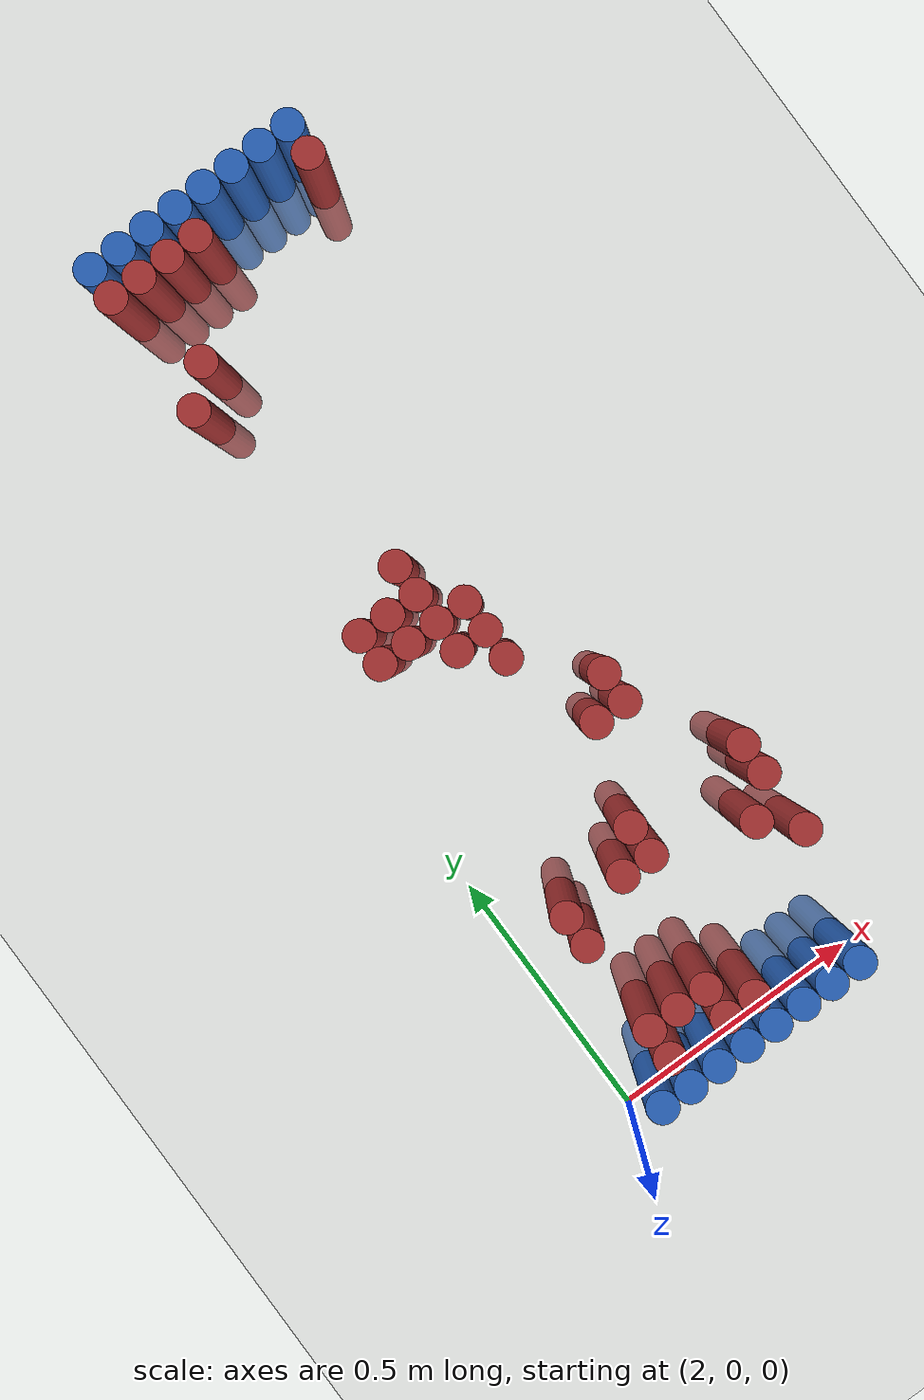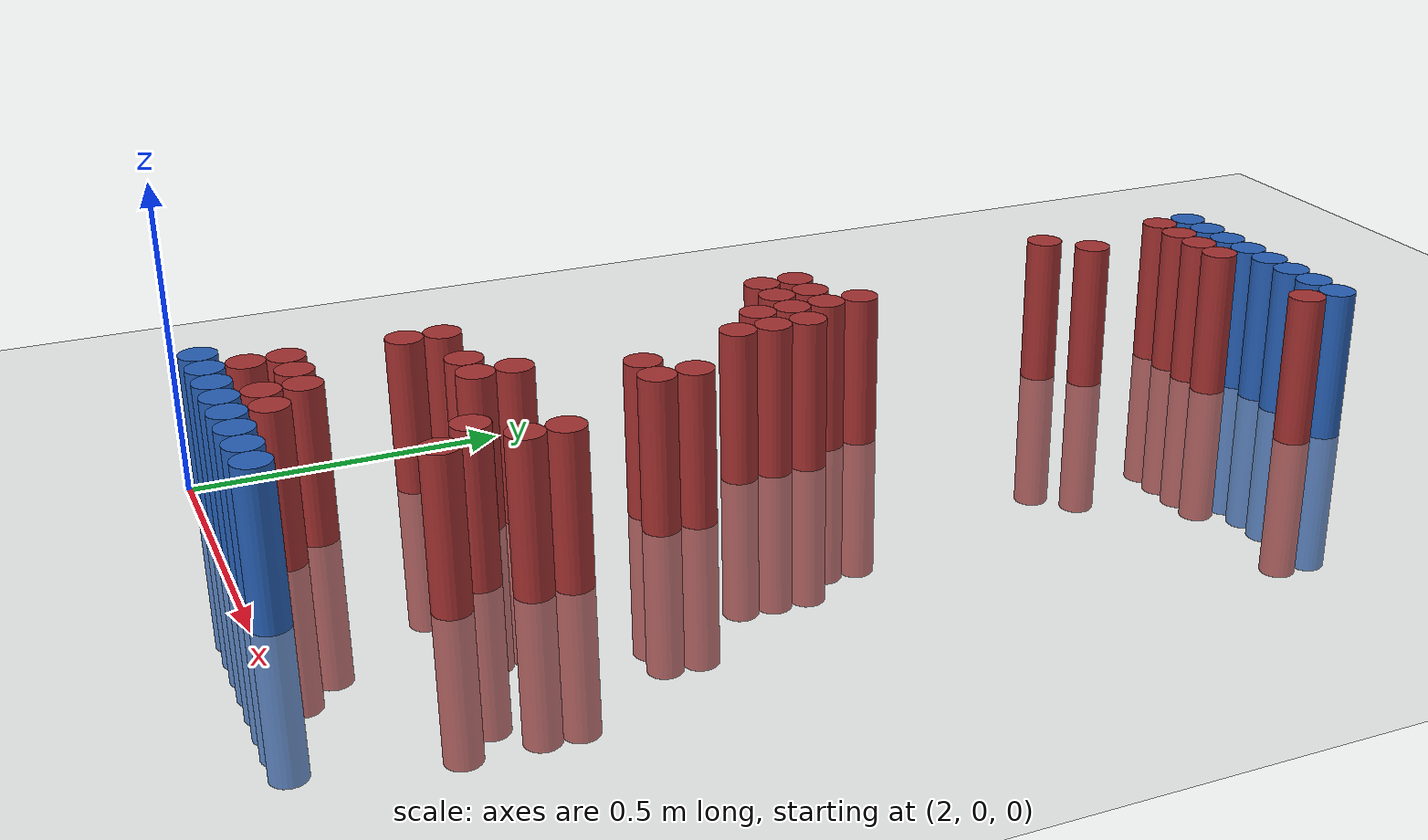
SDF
<sdf version="1.6">
 <world name="default">
  <model name="ground_plane">
   <static>1</static>
   <link name="link">
    <collision name="collision">
     <geometry><plane><normal>0 0 1</normal><size>100 100</size></plane></geometry>
     <surface><friction><ode><mu>100</mu><mu2>50</mu2></ode></friction></surface>
    </collision>
    <visual name="visual">
     <cast_shadows>0</cast_shadows>
     <geometry><plane><normal>0 0 1</normal><size>100 100</size></plane></geometry>
     <material>
      <script><uri>file://media/materials/scripts/gazebo.material</uri><name>Gazebo/Grey</name></script>
     </material>
    </visual>
   </link>
  </model>
  <model name="unit_cylinder_96">
   <static>1</static>
   <pose>2.130000 1.770000 0.000000 0.000000 0.000000 0.000000</pose>
   <link name="link">
    <inertial>
     <mass>1</mass>
     <inertia><ixx>0.145833</ixx><ixy>0</ixy><ixz>0</ixz><iyy>0.145833</iyy><iyz>0</iyz><izz>0.125</izz></inertia>
    </inertial>
    <collision name="collision">
     <geometry><cylinder><radius>0.030000</radius><length>0.5</length></cylinder></geometry>
    </collision>
    <visual name="visual">
     <geometry><cylinder><radius>0.030000</radius><length>0.5</length></cylinder></geometry>
     <material>
      <ambient>0.152000 0.379000 0.720000 1</ambient>
      <diffuse>0.152000 0.379000 0.720000 1</diffuse>
     </material>
     <material>
      <script><name>Gazebo/Grey</name><uri>file://media/materials/scripts/gazebo.material</uri></script>
     </material>
    </visual>
   </link>
  </model>
  <model name="unit_cylinder_97">
   <static>1</static>
   <pose>2.190000 1.770000 0.000000 0.000000 0.000000 0.000000</pose>
   <link name="link">
    <inertial>
     <mass>1</mass>
     <inertia><ixx>0.145833</ixx><ixy>0</ixy><ixz>0</ixz><iyy>0.145833</iyy><iyz>0</iyz><izz>0.125</izz></inertia>
    </inertial>
    <collision name="collision">
     <geometry><cylinder><radius>0.030000</radius><length>0.5</length></cylinder></geometry>
    </collision>
    <visual name="visual">
     <geometry><cylinder><radius>0.030000</radius><length>0.5</length></cylinder></geometry>
     <material>
      <ambient>0.152000 0.379000 0.720000 1</ambient>
      <diffuse>0.152000 0.379000 0.720000 1</diffuse>
     </material>
     <material>
      <script><name>Gazebo/Grey</name><uri>file://media/materials/scripts/gazebo.material</uri></script>
     </material>
    </visual>
   </link>
  </model>
  <model name="unit_cylinder_98">
   <static>1</static>
   <pose>2.250000 1.770000 0.000000 0.000000 0.000000 0.000000</pose>
   <link name="link">
    <inertial>
     <mass>1</mass>
     <inertia><ixx>0.145833</ixx><ixy>0</ixy><ixz>0</ixz><iyy>0.145833</iyy><iyz>0</iyz><izz>0.125</izz></inertia>
    </inertial>
    <collision name="collision">
     <geometry><cylinder><radius>0.030000</radius><length>0.5</length></cylinder></geometry>
    </collision>
    <visual name="visual">
     <geometry><cylinder><radius>0.030000</radius><length>0.5</length></cylinder></geometry>
     <material>
      <ambient>0.152000 0.379000 0.720000 1</ambient>
      <diffuse>0.152000 0.379000 0.720000 1</diffuse>
     </material>
     <material>
      <script><name>Gazebo/Grey</name><uri>file://media/materials/scripts/gazebo.material</uri></script>
     </material>
    </visual>
   </link>
  </model>
  <model name="unit_cylinder_99">
   <static>1</static>
   <pose>2.310000 1.770000 0.000000 0.000000 0.000000 0.000000</pose>
   <link name="link">
    <inertial>
     <mass>1</mass>
     <inertia><ixx>0.145833</ixx><ixy>0</ixy><ixz>0</ixz><iyy>0.145833</iyy><iyz>0</iyz><izz>0.125</izz></inertia>
    </inertial>
    <collision name="collision">
     <geometry><cylinder><radius>0.030000</radius><length>0.5</length></cylinder></geometry>
    </collision>
    <visual name="visual">
     <geometry><cylinder><radius>0.030000</radius><length>0.5</length></cylinder></geometry>
     <material>
      <ambient>0.152000 0.379000 0.720000 1</ambient>
      <diffuse>0.152000 0.379000 0.720000 1</diffuse>
     </material>
     <material>
      <script><name>Gazebo/Grey</name><uri>file://media/materials/scripts/gazebo.material</uri></script>
     </material>
    </visual>
   </link>
  </model>
  <model name="unit_cylinder_100">
   <static>1</static>
   <pose>2.370000 1.770000 0.000000 0.000000 0.000000 0.000000</pose>
   <link name="link">
    <inertial>
     <mass>1</mass>
     <inertia><ixx>0.145833</ixx><ixy>0</ixy><ixz>0</ixz><iyy>0.145833</iyy><iyz>0</iyz><izz>0.125</izz></inertia>
    </inertial>
    <collision name="collision">
     <geometry><cylinder><radius>0.030000</radius><length>0.5</length></cylinder></geometry>
    </collision>
    <visual name="visual">
     <geometry><cylinder><radius>0.030000</radius><length>0.5</length></cylinder></geometry>
     <material>
      <ambient>0.152000 0.379000 0.720000 1</ambient>
      <diffuse>0.152000 0.379000 0.720000 1</diffuse>
     </material>
     <material>
      <script><name>Gazebo/Grey</name><uri>file://media/materials/scripts/gazebo.material</uri></script>
     </material>
    </visual>
   </link>
  </model>
  <model name="unit_cylinder_101">
   <static>1</static>
   <pose>2.430000 1.770000 0.000000 0.000000 0.000000 0.000000</pose>
   <link name="link">
    <inertial>
     <mass>1</mass>
     <inertia><ixx>0.145833</ixx><ixy>0</ixy><ixz>0</ixz><iyy>0.145833</iyy><iyz>0</iyz><izz>0.125</izz></inertia>
    </inertial>
    <collision name="collision">
     <geometry><cylinder><radius>0.030000</radius><length>0.5</length></cylinder></geometry>
    </collision>
    <visual name="visual">
     <geometry><cylinder><radius>0.030000</radius><length>0.5</length></cylinder></geometry>
     <material>
      <ambient>0.152000 0.379000 0.720000 1</ambient>
      <diffuse>0.152000 0.379000 0.720000 1</diffuse>
     </material>
     <material>
      <script><name>Gazebo/Grey</name><uri>file://media/materials/scripts/gazebo.material</uri></script>
     </material>
    </visual>
   </link>
  </model>
  <model name="unit_cylinder_102">
   <static>1</static>
   <pose>2.490000 1.770000 0.000000 0.000000 0.000000 0.000000</pose>
   <link name="link">
    <inertial>
     <mass>1</mass>
     <inertia><ixx>0.145833</ixx><ixy>0</ixy><ixz>0</ixz><iyy>0.145833</iyy><iyz>0</iyz><izz>0.125</izz></inertia>
    </inertial>
    <collision name="collision">
     <geometry><cylinder><radius>0.030000</radius><length>0.5</length></cylinder></geometry>
    </collision>
    <visual name="visual">
     <geometry><cylinder><radius>0.030000</radius><length>0.5</length></cylinder></geometry>
     <material>
      <ambient>0.152000 0.379000 0.720000 1</ambient>
      <diffuse>0.152000 0.379000 0.720000 1</diffuse>
     </material>
     <material>
      <script><name>Gazebo/Grey</name><uri>file://media/materials/scripts/gazebo.material</uri></script>
     </material>
    </visual>
   </link>
  </model>
  <model name="unit_cylinder_103">
   <static>1</static>
   <pose>2.550000 1.770000 0.000000 0.000000 0.000000 0.000000</pose>
   <link name="link">
    <inertial>
     <mass>1</mass>
     <inertia><ixx>0.145833</ixx><ixy>0</ixy><ixz>0</ixz><iyy>0.145833</iyy><iyz>0</iyz><izz>0.125</izz></inertia>
    </inertial>
    <collision name="collision">
     <geometry><cylinder><radius>0.030000</radius><length>0.5</length></cylinder></geometry>
    </collision>
    <visual name="visual">
     <geometry><cylinder><radius>0.030000</radius><length>0.5</length></cylinder></geometry>
     <material>
      <ambient>0.152000 0.379000 0.720000 1</ambient>
      <diffuse>0.152000 0.379000 0.720000 1</diffuse>
     </material>
     <material>
      <script><name>Gazebo/Grey</name><uri>file://media/materials/scripts/gazebo.material</uri></script>
     </material>
    </visual>
   </link>
  </model>
  <model name="unit_cylinder_125">
   <static>1</static>
   <pose>2.130000 1.710000 0.000000 0.000000 0.000000 0.000000</pose>
   <link name="link">
    <inertial>
     <mass>1</mass>
     <inertia><ixx>0.145833</ixx><ixy>0</ixy><ixz>0</ixz><iyy>0.145833</iyy><iyz>0</iyz><izz>0.125</izz></inertia>
    </inertial>
    <collision name="collision">
     <geometry><cylinder><radius>0.030000</radius><length>0.5</length></cylinder></geometry>
    </collision>
    <visual name="visual">
     <geometry><cylinder><radius>0.030000</radius><length>0.5</length></cylinder></geometry>
     <material>
      <ambient>0.648000 0.192000 0.192000 1</ambient>
      <diffuse>0.648000 0.192000 0.192000 1</diffuse>
     </material>
     <material>
      <script><name>Gazebo/Grey</name><uri>file://media/materials/scripts/gazebo.material</uri></script>
     </material>
    </visual>
   </link>
  </model>
  <model name="unit_cylinder_126">
   <static>1</static>
   <pose>2.190000 1.710000 0.000000 0.000000 0.000000 0.000000</pose>
   <link name="link">
    <inertial>
     <mass>1</mass>
     <inertia><ixx>0.145833</ixx><ixy>0</ixy><ixz>0</ixz><iyy>0.145833</iyy><iyz>0</iyz><izz>0.125</izz></inertia>
    </inertial>
    <collision name="collision">
     <geometry><cylinder><radius>0.030000</radius><length>0.5</length></cylinder></geometry>
    </collision>
    <visual name="visual">
     <geometry><cylinder><radius>0.030000</radius><length>0.5</length></cylinder></geometry>
     <material>
      <ambient>0.648000 0.192000 0.192000 1</ambient>
      <diffuse>0.648000 0.192000 0.192000 1</diffuse>
     </material>
     <material>
      <script><name>Gazebo/Grey</name><uri>file://media/materials/scripts/gazebo.material</uri></script>
     </material>
    </visual>
   </link>
  </model>
  <model name="unit_cylinder_127">
   <static>1</static>
   <pose>2.250000 1.710000 0.000000 0.000000 0.000000 0.000000</pose>
   <link name="link">
    <inertial>
     <mass>1</mass>
     <inertia><ixx>0.145833</ixx><ixy>0</ixy><ixz>0</ixz><iyy>0.145833</iyy><iyz>0</iyz><izz>0.125</izz></inertia>
    </inertial>
    <collision name="collision">
     <geometry><cylinder><radius>0.030000</radius><length>0.5</length></cylinder></geometry>
    </collision>
    <visual name="visual">
     <geometry><cylinder><radius>0.030000</radius><length>0.5</length></cylinder></geometry>
     <material>
      <ambient>0.648000 0.192000 0.192000 1</ambient>
      <diffuse>0.648000 0.192000 0.192000 1</diffuse>
     </material>
     <material>
      <script><name>Gazebo/Grey</name><uri>file://media/materials/scripts/gazebo.material</uri></script>
     </material>
    </visual>
   </link>
  </model>
  <model name="unit_cylinder_128">
   <static>1</static>
   <pose>2.310000 1.710000 0.000000 0.000000 0.000000 0.000000</pose>
   <link name="link">
    <inertial>
     <mass>1</mass>
     <inertia><ixx>0.145833</ixx><ixy>0</ixy><ixz>0</ixz><iyy>0.145833</iyy><iyz>0</iyz><izz>0.125</izz></inertia>
    </inertial>
    <collision name="collision">
     <geometry><cylinder><radius>0.030000</radius><length>0.5</length></cylinder></geometry>
    </collision>
    <visual name="visual">
     <geometry><cylinder><radius>0.030000</radius><length>0.5</length></cylinder></geometry>
     <material>
      <ambient>0.648000 0.192000 0.192000 1</ambient>
      <diffuse>0.648000 0.192000 0.192000 1</diffuse>
     </material>
     <material>
      <script><name>Gazebo/Grey</name><uri>file://media/materials/scripts/gazebo.material</uri></script>
     </material>
    </visual>
   </link>
  </model>
  <model name="unit_cylinder_129">
   <static>1</static>
   <pose>2.550000 1.710000 0.000000 0.000000 0.000000 0.000000</pose>
   <link name="link">
    <inertial>
     <mass>1</mass>
     <inertia><ixx>0.145833</ixx><ixy>0</ixy><ixz>0</ixz><iyy>0.145833</iyy><iyz>0</iyz><izz>0.125</izz></inertia>
    </inertial>
    <collision name="collision">
     <geometry><cylinder><radius>0.030000</radius><length>0.5</length></cylinder></geometry>
    </collision>
    <visual name="visual">
     <geometry><cylinder><radius>0.030000</radius><length>0.5</length></cylinder></geometry>
     <material>
      <ambient>0.648000 0.192000 0.192000 1</ambient>
      <diffuse>0.648000 0.192000 0.192000 1</diffuse>
     </material>
     <material>
      <script><name>Gazebo/Grey</name><uri>file://media/materials/scripts/gazebo.material</uri></script>
     </material>
    </visual>
   </link>
  </model>
  <model name="unit_cylinder_155">
   <static>1</static>
   <pose>2.190000 1.530000 0.000000 0.000000 0.000000 0.000000</pose>
   <link name="link">
    <inertial>
     <mass>1</mass>
     <inertia><ixx>0.145833</ixx><ixy>0</ixy><ixz>0</ixz><iyy>0.145833</iyy><iyz>0</iyz><izz>0.125</izz></inertia>
    </inertial>
    <collision name="collision">
     <geometry><cylinder><radius>0.030000</radius><length>0.5</length></cylinder></geometry>
    </collision>
    <visual name="visual">
     <geometry><cylinder><radius>0.030000</radius><length>0.5</length></cylinder></geometry>
     <material>
      <ambient>0.648000 0.192000 0.192000 1</ambient>
      <diffuse>0.648000 0.192000 0.192000 1</diffuse>
     </material>
     <material>
      <script><name>Gazebo/Grey</name><uri>file://media/materials/scripts/gazebo.material</uri></script>
     </material>
    </visual>
   </link>
  </model>
  <model name="unit_cylinder_164">
   <static>1</static>
   <pose>2.130000 1.470000 0.000000 0.000000 0.000000 0.000000</pose>
   <link name="link">
    <inertial>
     <mass>1</mass>
     <inertia><ixx>0.145833</ixx><ixy>0</ixy><ixz>0</ixz><iyy>0.145833</iyy><iyz>0</iyz><izz>0.125</izz></inertia>
    </inertial>
    <collision name="collision">
     <geometry><cylinder><radius>0.030000</radius><length>0.5</length></cylinder></geometry>
    </collision>
    <visual name="visual">
     <geometry><cylinder><radius>0.030000</radius><length>0.5</length></cylinder></geometry>
     <material>
      <ambient>0.648000 0.192000 0.192000 1</ambient>
      <diffuse>0.648000 0.192000 0.192000 1</diffuse>
     </material>
     <material>
      <script><name>Gazebo/Grey</name><uri>file://media/materials/scripts/gazebo.material</uri></script>
     </material>
    </visual>
   </link>
  </model>
  <model name="unit_cylinder_197">
   <static>1</static>
   <pose>2.250000 1.050000 0.000000 0.000000 0.000000 0.000000</pose>
   <link name="link">
    <inertial>
     <mass>1</mass>
     <inertia><ixx>0.145833</ixx><ixy>0</ixy><ixz>0</ixz><iyy>0.145833</iyy><iyz>0</iyz><izz>0.125</izz></inertia>
    </inertial>
    <collision name="collision">
     <geometry><cylinder><radius>0.030000</radius><length>0.5</length></cylinder></geometry>
    </collision>
    <visual name="visual">
     <geometry><cylinder><radius>0.030000</radius><length>0.5</length></cylinder></geometry>
     <material>
      <ambient>0.648000 0.192000 0.192000 1</ambient>
      <diffuse>0.648000 0.192000 0.192000 1</diffuse>
     </material>
     <material>
      <script><name>Gazebo/Grey</name><uri>file://media/materials/scripts/gazebo.material</uri></script>
     </material>
    </visual>
   </link>
  </model>
  <model name="unit_cylinder_199">
   <static>1</static>
   <pose>2.130000 0.990000 0.000000 0.000000 0.000000 0.000000</pose>
   <link name="link">
    <inertial>
     <mass>1</mass>
     <inertia><ixx>0.145833</ixx><ixy>0</ixy><ixz>0</ixz><iyy>0.145833</iyy><iyz>0</iyz><izz>0.125</izz></inertia>
    </inertial>
    <collision name="collision">
     <geometry><cylinder><radius>0.030000</radius><length>0.5</length></cylinder></geometry>
    </collision>
    <visual name="visual">
     <geometry><cylinder><radius>0.030000</radius><length>0.5</length></cylinder></geometry>
     <material>
      <ambient>0.648000 0.192000 0.192000 1</ambient>
      <diffuse>0.648000 0.192000 0.192000 1</diffuse>
     </material>
     <material>
      <script><name>Gazebo/Grey</name><uri>file://media/materials/scripts/gazebo.material</uri></script>
     </material>
    </visual>
   </link>
  </model>
  <model name="unit_cylinder_200">
   <static>1</static>
   <pose>2.190000 0.990000 0.000000 0.000000 0.000000 0.000000</pose>
   <link name="link">
    <inertial>
     <mass>1</mass>
     <inertia><ixx>0.145833</ixx><ixy>0</ixy><ixz>0</ixz><iyy>0.145833</iyy><iyz>0</iyz><izz>0.125</izz></inertia>
    </inertial>
    <collision name="collision">
     <geometry><cylinder><radius>0.030000</radius><length>0.5</length></cylinder></geometry>
    </collision>
    <visual name="visual">
     <geometry><cylinder><radius>0.030000</radius><length>0.5</length></cylinder></geometry>
     <material>
      <ambient>0.648000 0.192000 0.192000 1</ambient>
      <diffuse>0.648000 0.192000 0.192000 1</diffuse>
     </material>
     <material>
      <script><name>Gazebo/Grey</name><uri>file://media/materials/scripts/gazebo.material</uri></script>
     </material>
    </visual>
   </link>
  </model>
  <model name="unit_cylinder_201">
   <static>1</static>
   <pose>2.250000 0.990000 0.000000 0.000000 0.000000 0.000000</pose>
   <link name="link">
    <inertial>
     <mass>1</mass>
     <inertia><ixx>0.145833</ixx><ixy>0</ixy><ixz>0</ixz><iyy>0.145833</iyy><iyz>0</iyz><izz>0.125</izz></inertia>
    </inertial>
    <collision name="collision">
     <geometry><cylinder><radius>0.030000</radius><length>0.5</length></cylinder></geometry>
    </collision>
    <visual name="visual">
     <geometry><cylinder><radius>0.030000</radius><length>0.5</length></cylinder></geometry>
     <material>
      <ambient>0.648000 0.192000 0.192000 1</ambient>
      <diffuse>0.648000 0.192000 0.192000 1</diffuse>
     </material>
     <material>
      <script><name>Gazebo/Grey</name><uri>file://media/materials/scripts/gazebo.material</uri></script>
     </material>
    </visual>
   </link>
  </model>
  <model name="unit_cylinder_202">
   <static>1</static>
   <pose>2.130000 0.930000 0.000000 0.000000 0.000000 0.000000</pose>
   <link name="link">
    <inertial>
     <mass>1</mass>
     <inertia><ixx>0.145833</ixx><ixy>0</ixy><ixz>0</ixz><iyy>0.145833</iyy><iyz>0</iyz><izz>0.125</izz></inertia>
    </inertial>
    <collision name="collision">
     <geometry><cylinder><radius>0.030000</radius><length>0.5</length></cylinder></geometry>
    </collision>
    <visual name="visual">
     <geometry><cylinder><radius>0.030000</radius><length>0.5</length></cylinder></geometry>
     <material>
      <ambient>0.648000 0.192000 0.192000 1</ambient>
      <diffuse>0.648000 0.192000 0.192000 1</diffuse>
     </material>
     <material>
      <script><name>Gazebo/Grey</name><uri>file://media/materials/scripts/gazebo.material</uri></script>
     </material>
    </visual>
   </link>
  </model>
  <model name="unit_cylinder_203">
   <static>1</static>
   <pose>2.190000 0.930000 0.000000 0.000000 0.000000 0.000000</pose>
   <link name="link">
    <inertial>
     <mass>1</mass>
     <inertia><ixx>0.145833</ixx><ixy>0</ixy><ixz>0</ixz><iyy>0.145833</iyy><iyz>0</iyz><izz>0.125</izz></inertia>
    </inertial>
    <collision name="collision">
     <geometry><cylinder><radius>0.030000</radius><length>0.5</length></cylinder></geometry>
    </collision>
    <visual name="visual">
     <geometry><cylinder><radius>0.030000</radius><length>0.5</length></cylinder></geometry>
     <material>
      <ambient>0.648000 0.192000 0.192000 1</ambient>
      <diffuse>0.648000 0.192000 0.192000 1</diffuse>
     </material>
     <material>
      <script><name>Gazebo/Grey</name><uri>file://media/materials/scripts/gazebo.material</uri></script>
     </material>
    </visual>
   </link>
  </model>
  <model name="unit_cylinder_204">
   <static>1</static>
   <pose>2.250000 0.930000 0.000000 0.000000 0.000000 0.000000</pose>
   <link name="link">
    <inertial>
     <mass>1</mass>
     <inertia><ixx>0.145833</ixx><ixy>0</ixy><ixz>0</ixz><iyy>0.145833</iyy><iyz>0</iyz><izz>0.125</izz></inertia>
    </inertial>
    <collision name="collision">
     <geometry><cylinder><radius>0.030000</radius><length>0.5</length></cylinder></geometry>
    </collision>
    <visual name="visual">
     <geometry><cylinder><radius>0.030000</radius><length>0.5</length></cylinder></geometry>
     <material>
      <ambient>0.648000 0.192000 0.192000 1</ambient>
      <diffuse>0.648000 0.192000 0.192000 1</diffuse>
     </material>
     <material>
      <script><name>Gazebo/Grey</name><uri>file://media/materials/scripts/gazebo.material</uri></script>
     </material>
    </visual>
   </link>
  </model>
  <model name="unit_cylinder_205">
   <static>1</static>
   <pose>2.310000 0.930000 0.000000 0.000000 0.000000 0.000000</pose>
   <link name="link">
    <inertial>
     <mass>1</mass>
     <inertia><ixx>0.145833</ixx><ixy>0</ixy><ixz>0</ixz><iyy>0.145833</iyy><iyz>0</iyz><izz>0.125</izz></inertia>
    </inertial>
    <collision name="collision">
     <geometry><cylinder><radius>0.030000</radius><length>0.5</length></cylinder></geometry>
    </collision>
    <visual name="visual">
     <geometry><cylinder><radius>0.030000</radius><length>0.5</length></cylinder></geometry>
     <material>
      <ambient>0.648000 0.192000 0.192000 1</ambient>
      <diffuse>0.648000 0.192000 0.192000 1</diffuse>
     </material>
     <material>
      <script><name>Gazebo/Grey</name><uri>file://media/materials/scripts/gazebo.material</uri></script>
     </material>
    </visual>
   </link>
  </model>
  <model name="unit_cylinder_206">
   <static>1</static>
   <pose>2.250000 0.870000 0.000000 0.000000 0.000000 0.000000</pose>
   <link name="link">
    <inertial>
     <mass>1</mass>
     <inertia><ixx>0.145833</ixx><ixy>0</ixy><ixz>0</ixz><iyy>0.145833</iyy><iyz>0</iyz><izz>0.125</izz></inertia>
    </inertial>
    <collision name="collision">
     <geometry><cylinder><radius>0.030000</radius><length>0.5</length></cylinder></geometry>
    </collision>
    <visual name="visual">
     <geometry><cylinder><radius>0.030000</radius><length>0.5</length></cylinder></geometry>
     <material>
      <ambient>0.648000 0.192000 0.192000 1</ambient>
      <diffuse>0.648000 0.192000 0.192000 1</diffuse>
     </material>
     <material>
      <script><name>Gazebo/Grey</name><uri>file://media/materials/scripts/gazebo.material</uri></script>
     </material>
    </visual>
   </link>
  </model>
  <model name="unit_cylinder_207">
   <static>1</static>
   <pose>2.310000 0.870000 0.000000 0.000000 0.000000 0.000000</pose>
   <link name="link">
    <inertial>
     <mass>1</mass>
     <inertia><ixx>0.145833</ixx><ixy>0</ixy><ixz>0</ixz><iyy>0.145833</iyy><iyz>0</iyz><izz>0.125</izz></inertia>
    </inertial>
    <collision name="collision">
     <geometry><cylinder><radius>0.030000</radius><length>0.5</length></cylinder></geometry>
    </collision>
    <visual name="visual">
     <geometry><cylinder><radius>0.030000</radius><length>0.5</length></cylinder></geometry>
     <material>
      <ambient>0.648000 0.192000 0.192000 1</ambient>
      <diffuse>0.648000 0.192000 0.192000 1</diffuse>
     </material>
     <material>
      <script><name>Gazebo/Grey</name><uri>file://media/materials/scripts/gazebo.material</uri></script>
     </material>
    </visual>
   </link>
  </model>
  <model name="unit_cylinder_208">
   <static>1</static>
   <pose>2.310000 0.810000 0.000000 0.000000 0.000000 0.000000</pose>
   <link name="link">
    <inertial>
     <mass>1</mass>
     <inertia><ixx>0.145833</ixx><ixy>0</ixy><ixz>0</ixz><iyy>0.145833</iyy><iyz>0</iyz><izz>0.125</izz></inertia>
    </inertial>
    <collision name="collision">
     <geometry><cylinder><radius>0.030000</radius><length>0.5</length></cylinder></geometry>
    </collision>
    <visual name="visual">
     <geometry><cylinder><radius>0.030000</radius><length>0.5</length></cylinder></geometry>
     <material>
      <ambient>0.648000 0.192000 0.192000 1</ambient>
      <diffuse>0.648000 0.192000 0.192000 1</diffuse>
     </material>
     <material>
      <script><name>Gazebo/Grey</name><uri>file://media/materials/scripts/gazebo.material</uri></script>
     </material>
    </visual>
   </link>
  </model>
  <model name="unit_cylinder_209">
   <static>1</static>
   <pose>2.430000 0.690000 0.000000 0.000000 0.000000 0.000000</pose>
   <link name="link">
    <inertial>
     <mass>1</mass>
     <inertia><ixx>0.145833</ixx><ixy>0</ixy><ixz>0</ixz><iyy>0.145833</iyy><iyz>0</iyz><izz>0.125</izz></inertia>
    </inertial>
    <collision name="collision">
     <geometry><cylinder><radius>0.030000</radius><length>0.5</length></cylinder></geometry>
    </collision>
    <visual name="visual">
     <geometry><cylinder><radius>0.030000</radius><length>0.5</length></cylinder></geometry>
     <material>
      <ambient>0.648000 0.192000 0.192000 1</ambient>
      <diffuse>0.648000 0.192000 0.192000 1</diffuse>
     </material>
     <material>
      <script><name>Gazebo/Grey</name><uri>file://media/materials/scripts/gazebo.material</uri></script>
     </material>
    </visual>
   </link>
  </model>
  <model name="unit_cylinder_211">
   <static>1</static>
   <pose>2.370000 0.630000 0.000000 0.000000 0.000000 0.000000</pose>
   <link name="link">
    <inertial>
     <mass>1</mass>
     <inertia><ixx>0.145833</ixx><ixy>0</ixy><ixz>0</ixz><iyy>0.145833</iyy><iyz>0</iyz><izz>0.125</izz></inertia>
    </inertial>
    <collision name="collision">
     <geometry><cylinder><radius>0.030000</radius><length>0.5</length></cylinder></geometry>
    </collision>
    <visual name="visual">
     <geometry><cylinder><radius>0.030000</radius><length>0.5</length></cylinder></geometry>
     <material>
      <ambient>0.648000 0.192000 0.192000 1</ambient>
      <diffuse>0.648000 0.192000 0.192000 1</diffuse>
     </material>
     <material>
      <script><name>Gazebo/Grey</name><uri>file://media/materials/scripts/gazebo.material</uri></script>
     </material>
    </visual>
   </link>
  </model>
  <model name="unit_cylinder_212">
   <static>1</static>
   <pose>2.430000 0.630000 0.000000 0.000000 0.000000 0.000000</pose>
   <link name="link">
    <inertial>
     <mass>1</mass>
     <inertia><ixx>0.145833</ixx><ixy>0</ixy><ixz>0</ixz><iyy>0.145833</iyy><iyz>0</iyz><izz>0.125</izz></inertia>
    </inertial>
    <collision name="collision">
     <geometry><cylinder><radius>0.030000</radius><length>0.5</length></cylinder></geometry>
    </collision>
    <visual name="visual">
     <geometry><cylinder><radius>0.030000</radius><length>0.5</length></cylinder></geometry>
     <material>
      <ambient>0.648000 0.192000 0.192000 1</ambient>
      <diffuse>0.648000 0.192000 0.192000 1</diffuse>
     </material>
     <material>
      <script><name>Gazebo/Grey</name><uri>file://media/materials/scripts/gazebo.material</uri></script>
     </material>
    </visual>
   </link>
  </model>
  <model name="unit_cylinder_229">
   <static>1</static>
   <pose>2.310000 0.450000 0.000000 0.000000 0.000000 0.000000</pose>
   <link name="link">
    <inertial>
     <mass>1</mass>
     <inertia><ixx>0.145833</ixx><ixy>0</ixy><ixz>0</ixz><iyy>0.145833</iyy><iyz>0</iyz><izz>0.125</izz></inertia>
    </inertial>
    <collision name="collision">
     <geometry><cylinder><radius>0.030000</radius><length>0.5</length></cylinder></geometry>
    </collision>
    <visual name="visual">
     <geometry><cylinder><radius>0.030000</radius><length>0.5</length></cylinder></geometry>
     <material>
      <ambient>0.648000 0.192000 0.192000 1</ambient>
      <diffuse>0.648000 0.192000 0.192000 1</diffuse>
     </material>
     <material>
      <script><name>Gazebo/Grey</name><uri>file://media/materials/scripts/gazebo.material</uri></script>
     </material>
    </visual>
   </link>
  </model>
  <model name="unit_cylinder_230">
   <static>1</static>
   <pose>2.550000 0.450000 0.000000 0.000000 0.000000 0.000000</pose>
   <link name="link">
    <inertial>
     <mass>1</mass>
     <inertia><ixx>0.145833</ixx><ixy>0</ixy><ixz>0</ixz><iyy>0.145833</iyy><iyz>0</iyz><izz>0.125</izz></inertia>
    </inertial>
    <collision name="collision">
     <geometry><cylinder><radius>0.030000</radius><length>0.5</length></cylinder></geometry>
    </collision>
    <visual name="visual">
     <geometry><cylinder><radius>0.030000</radius><length>0.5</length></cylinder></geometry>
     <material>
      <ambient>0.648000 0.192000 0.192000 1</ambient>
      <diffuse>0.648000 0.192000 0.192000 1</diffuse>
     </material>
     <material>
      <script><name>Gazebo/Grey</name><uri>file://media/materials/scripts/gazebo.material</uri></script>
     </material>
    </visual>
   </link>
  </model>
  <model name="unit_cylinder_238">
   <static>1</static>
   <pose>2.130000 0.390000 0.000000 0.000000 0.000000 0.000000</pose>
   <link name="link">
    <inertial>
     <mass>1</mass>
     <inertia><ixx>0.145833</ixx><ixy>0</ixy><ixz>0</ixz><iyy>0.145833</iyy><iyz>0</iyz><izz>0.125</izz></inertia>
    </inertial>
    <collision name="collision">
     <geometry><cylinder><radius>0.030000</radius><length>0.5</length></cylinder></geometry>
    </collision>
    <visual name="visual">
     <geometry><cylinder><radius>0.030000</radius><length>0.5</length></cylinder></geometry>
     <material>
      <ambient>0.648000 0.192000 0.192000 1</ambient>
      <diffuse>0.648000 0.192000 0.192000 1</diffuse>
     </material>
     <material>
      <script><name>Gazebo/Grey</name><uri>file://media/materials/scripts/gazebo.material</uri></script>
     </material>
    </visual>
   </link>
  </model>
  <model name="unit_cylinder_239">
   <static>1</static>
   <pose>2.250000 0.390000 0.000000 0.000000 0.000000 0.000000</pose>
   <link name="link">
    <inertial>
     <mass>1</mass>
     <inertia><ixx>0.145833</ixx><ixy>0</ixy><ixz>0</ixz><iyy>0.145833</iyy><iyz>0</iyz><izz>0.125</izz></inertia>
    </inertial>
    <collision name="collision">
     <geometry><cylinder><radius>0.030000</radius><length>0.5</length></cylinder></geometry>
    </collision>
    <visual name="visual">
     <geometry><cylinder><radius>0.030000</radius><length>0.5</length></cylinder></geometry>
     <material>
      <ambient>0.648000 0.192000 0.192000 1</ambient>
      <diffuse>0.648000 0.192000 0.192000 1</diffuse>
     </material>
     <material>
      <script><name>Gazebo/Grey</name><uri>file://media/materials/scripts/gazebo.material</uri></script>
     </material>
    </visual>
   </link>
  </model>
  <model name="unit_cylinder_240">
   <static>1</static>
   <pose>2.310000 0.390000 0.000000 0.000000 0.000000 0.000000</pose>
   <link name="link">
    <inertial>
     <mass>1</mass>
     <inertia><ixx>0.145833</ixx><ixy>0</ixy><ixz>0</ixz><iyy>0.145833</iyy><iyz>0</iyz><izz>0.125</izz></inertia>
    </inertial>
    <collision name="collision">
     <geometry><cylinder><radius>0.030000</radius><length>0.5</length></cylinder></geometry>
    </collision>
    <visual name="visual">
     <geometry><cylinder><radius>0.030000</radius><length>0.5</length></cylinder></geometry>
     <material>
      <ambient>0.648000 0.192000 0.192000 1</ambient>
      <diffuse>0.648000 0.192000 0.192000 1</diffuse>
     </material>
     <material>
      <script><name>Gazebo/Grey</name><uri>file://media/materials/scripts/gazebo.material</uri></script>
     </material>
    </visual>
   </link>
  </model>
  <model name="unit_cylinder_241">
   <static>1</static>
   <pose>2.550000 0.390000 0.000000 0.000000 0.000000 0.000000</pose>
   <link name="link">
    <inertial>
     <mass>1</mass>
     <inertia><ixx>0.145833</ixx><ixy>0</ixy><ixz>0</ixz><iyy>0.145833</iyy><iyz>0</iyz><izz>0.125</izz></inertia>
    </inertial>
    <collision name="collision">
     <geometry><cylinder><radius>0.030000</radius><length>0.5</length></cylinder></geometry>
    </collision>
    <visual name="visual">
     <geometry><cylinder><radius>0.030000</radius><length>0.5</length></cylinder></geometry>
     <material>
      <ambient>0.648000 0.192000 0.192000 1</ambient>
      <diffuse>0.648000 0.192000 0.192000 1</diffuse>
     </material>
     <material>
      <script><name>Gazebo/Grey</name><uri>file://media/materials/scripts/gazebo.material</uri></script>
     </material>
    </visual>
   </link>
  </model>
  <model name="unit_cylinder_249">
   <static>1</static>
   <pose>2.130000 0.330000 0.000000 0.000000 0.000000 0.000000</pose>
   <link name="link">
    <inertial>
     <mass>1</mass>
     <inertia><ixx>0.145833</ixx><ixy>0</ixy><ixz>0</ixz><iyy>0.145833</iyy><iyz>0</iyz><izz>0.125</izz></inertia>
    </inertial>
    <collision name="collision">
     <geometry><cylinder><radius>0.030000</radius><length>0.5</length></cylinder></geometry>
    </collision>
    <visual name="visual">
     <geometry><cylinder><radius>0.030000</radius><length>0.5</length></cylinder></geometry>
     <material>
      <ambient>0.648000 0.192000 0.192000 1</ambient>
      <diffuse>0.648000 0.192000 0.192000 1</diffuse>
     </material>
     <material>
      <script><name>Gazebo/Grey</name><uri>file://media/materials/scripts/gazebo.material</uri></script>
     </material>
    </visual>
   </link>
  </model>
  <model name="unit_cylinder_250">
   <static>1</static>
   <pose>2.490000 0.330000 0.000000 0.000000 0.000000 0.000000</pose>
   <link name="link">
    <inertial>
     <mass>1</mass>
     <inertia><ixx>0.145833</ixx><ixy>0</ixy><ixz>0</ixz><iyy>0.145833</iyy><iyz>0</iyz><izz>0.125</izz></inertia>
    </inertial>
    <collision name="collision">
     <geometry><cylinder><radius>0.030000</radius><length>0.5</length></cylinder></geometry>
    </collision>
    <visual name="visual">
     <geometry><cylinder><radius>0.030000</radius><length>0.5</length></cylinder></geometry>
     <material>
      <ambient>0.648000 0.192000 0.192000 1</ambient>
      <diffuse>0.648000 0.192000 0.192000 1</diffuse>
     </material>
     <material>
      <script><name>Gazebo/Grey</name><uri>file://media/materials/scripts/gazebo.material</uri></script>
     </material>
    </visual>
   </link>
  </model>
  <model name="unit_cylinder_257">
   <static>1</static>
   <pose>2.550000 0.270000 0.000000 0.000000 0.000000 0.000000</pose>
   <link name="link">
    <inertial>
     <mass>1</mass>
     <inertia><ixx>0.145833</ixx><ixy>0</ixy><ixz>0</ixz><iyy>0.145833</iyy><iyz>0</iyz><izz>0.125</izz></inertia>
    </inertial>
    <collision name="collision">
     <geometry><cylinder><radius>0.030000</radius><length>0.5</length></cylinder></geometry>
    </collision>
    <visual name="visual">
     <geometry><cylinder><radius>0.030000</radius><length>0.5</length></cylinder></geometry>
     <material>
      <ambient>0.648000 0.192000 0.192000 1</ambient>
      <diffuse>0.648000 0.192000 0.192000 1</diffuse>
     </material>
     <material>
      <script><name>Gazebo/Grey</name><uri>file://media/materials/scripts/gazebo.material</uri></script>
     </material>
    </visual>
   </link>
  </model>
  <model name="unit_cylinder_270">
   <static>1</static>
   <pose>2.130000 0.150000 0.000000 0.000000 0.000000 0.000000</pose>
   <link name="link">
    <inertial>
     <mass>1</mass>
     <inertia><ixx>0.145833</ixx><ixy>0</ixy><ixz>0</ixz><iyy>0.145833</iyy><iyz>0</iyz><izz>0.125</izz></inertia>
    </inertial>
    <collision name="collision">
     <geometry><cylinder><radius>0.030000</radius><length>0.5</length></cylinder></geometry>
    </collision>
    <visual name="visual">
     <geometry><cylinder><radius>0.030000</radius><length>0.5</length></cylinder></geometry>
     <material>
      <ambient>0.648000 0.192000 0.192000 1</ambient>
      <diffuse>0.648000 0.192000 0.192000 1</diffuse>
     </material>
     <material>
      <script><name>Gazebo/Grey</name><uri>file://media/materials/scripts/gazebo.material</uri></script>
     </material>
    </visual>
   </link>
  </model>
  <model name="unit_cylinder_271">
   <static>1</static>
   <pose>2.190000 0.150000 0.000000 0.000000 0.000000 0.000000</pose>
   <link name="link">
    <inertial>
     <mass>1</mass>
     <inertia><ixx>0.145833</ixx><ixy>0</ixy><ixz>0</ixz><iyy>0.145833</iyy><iyz>0</iyz><izz>0.125</izz></inertia>
    </inertial>
    <collision name="collision">
     <geometry><cylinder><radius>0.030000</radius><length>0.5</length></cylinder></geometry>
    </collision>
    <visual name="visual">
     <geometry><cylinder><radius>0.030000</radius><length>0.5</length></cylinder></geometry>
     <material>
      <ambient>0.648000 0.192000 0.192000 1</ambient>
      <diffuse>0.648000 0.192000 0.192000 1</diffuse>
     </material>
     <material>
      <script><name>Gazebo/Grey</name><uri>file://media/materials/scripts/gazebo.material</uri></script>
     </material>
    </visual>
   </link>
  </model>
  <model name="unit_cylinder_272">
   <static>1</static>
   <pose>2.250000 0.150000 0.000000 0.000000 0.000000 0.000000</pose>
   <link name="link">
    <inertial>
     <mass>1</mass>
     <inertia><ixx>0.145833</ixx><ixy>0</ixy><ixz>0</ixz><iyy>0.145833</iyy><iyz>0</iyz><izz>0.125</izz></inertia>
    </inertial>
    <collision name="collision">
     <geometry><cylinder><radius>0.030000</radius><length>0.5</length></cylinder></geometry>
    </collision>
    <visual name="visual">
     <geometry><cylinder><radius>0.030000</radius><length>0.5</length></cylinder></geometry>
     <material>
      <ambient>0.648000 0.192000 0.192000 1</ambient>
      <diffuse>0.648000 0.192000 0.192000 1</diffuse>
     </material>
     <material>
      <script><name>Gazebo/Grey</name><uri>file://media/materials/scripts/gazebo.material</uri></script>
     </material>
    </visual>
   </link>
  </model>
  <model name="unit_cylinder_273">
   <static>1</static>
   <pose>2.130000 0.090000 0.000000 0.000000 0.000000 0.000000</pose>
   <link name="link">
    <inertial>
     <mass>1</mass>
     <inertia><ixx>0.145833</ixx><ixy>0</ixy><ixz>0</ixz><iyy>0.145833</iyy><iyz>0</iyz><izz>0.125</izz></inertia>
    </inertial>
    <collision name="collision">
     <geometry><cylinder><radius>0.030000</radius><length>0.5</length></cylinder></geometry>
    </collision>
    <visual name="visual">
     <geometry><cylinder><radius>0.030000</radius><length>0.5</length></cylinder></geometry>
     <material>
      <ambient>0.648000 0.192000 0.192000 1</ambient>
      <diffuse>0.648000 0.192000 0.192000 1</diffuse>
     </material>
     <material>
      <script><name>Gazebo/Grey</name><uri>file://media/materials/scripts/gazebo.material</uri></script>
     </material>
    </visual>
   </link>
  </model>
  <model name="unit_cylinder_274">
   <static>1</static>
   <pose>2.250000 0.090000 0.000000 0.000000 0.000000 0.000000</pose>
   <link name="link">
    <inertial>
     <mass>1</mass>
     <inertia><ixx>0.145833</ixx><ixy>0</ixy><ixz>0</ixz><iyy>0.145833</iyy><iyz>0</iyz><izz>0.125</izz></inertia>
    </inertial>
    <collision name="collision">
     <geometry><cylinder><radius>0.030000</radius><length>0.5</length></cylinder></geometry>
    </collision>
    <visual name="visual">
     <geometry><cylinder><radius>0.030000</radius><length>0.5</length></cylinder></geometry>
     <material>
      <ambient>0.648000 0.192000 0.192000 1</ambient>
      <diffuse>0.648000 0.192000 0.192000 1</diffuse>
     </material>
     <material>
      <script><name>Gazebo/Grey</name><uri>file://media/materials/scripts/gazebo.material</uri></script>
     </material>
    </visual>
   </link>
  </model>
  <model name="unit_cylinder_275">
   <static>1</static>
   <pose>2.310000 0.090000 0.000000 0.000000 0.000000 0.000000</pose>
   <link name="link">
    <inertial>
     <mass>1</mass>
     <inertia><ixx>0.145833</ixx><ixy>0</ixy><ixz>0</ixz><iyy>0.145833</iyy><iyz>0</iyz><izz>0.125</izz></inertia>
    </inertial>
    <collision name="collision">
     <geometry><cylinder><radius>0.030000</radius><length>0.5</length></cylinder></geometry>
    </collision>
    <visual name="visual">
     <geometry><cylinder><radius>0.030000</radius><length>0.5</length></cylinder></geometry>
     <material>
      <ambient>0.648000 0.192000 0.192000 1</ambient>
      <diffuse>0.648000 0.192000 0.192000 1</diffuse>
     </material>
     <material>
      <script><name>Gazebo/Grey</name><uri>file://media/materials/scripts/gazebo.material</uri></script>
     </material>
    </visual>
   </link>
  </model>
  <model name="unit_cylinder_282">
   <static>1</static>
   <pose>2.070000 0.030000 0.000000 0.000000 0.000000 0.000000</pose>
   <link name="link">
    <inertial>
     <mass>1</mass>
     <inertia><ixx>0.145833</ixx><ixy>0</ixy><ixz>0</ixz><iyy>0.145833</iyy><iyz>0</iyz><izz>0.125</izz></inertia>
    </inertial>
    <collision name="collision">
     <geometry><cylinder><radius>0.030000</radius><length>0.5</length></cylinder></geometry>
    </collision>
    <visual name="visual">
     <geometry><cylinder><radius>0.030000</radius><length>0.5</length></cylinder></geometry>
     <material>
      <ambient>0.152000 0.379000 0.720000 1</ambient>
      <diffuse>0.152000 0.379000 0.720000 1</diffuse>
     </material>
     <material>
      <script><name>Gazebo/Grey</name><uri>file://media/materials/scripts/gazebo.material</uri></script>
     </material>
    </visual>
   </link>
  </model>
  <model name="unit_cylinder_283">
   <static>1</static>
   <pose>2.130000 0.030000 0.000000 0.000000 0.000000 0.000000</pose>
   <link name="link">
    <inertial>
     <mass>1</mass>
     <inertia><ixx>0.145833</ixx><ixy>0</ixy><ixz>0</ixz><iyy>0.145833</iyy><iyz>0</iyz><izz>0.125</izz></inertia>
    </inertial>
    <collision name="collision">
     <geometry><cylinder><radius>0.030000</radius><length>0.5</length></cylinder></geometry>
    </collision>
    <visual name="visual">
     <geometry><cylinder><radius>0.030000</radius><length>0.5</length></cylinder></geometry>
     <material>
      <ambient>0.152000 0.379000 0.720000 1</ambient>
      <diffuse>0.152000 0.379000 0.720000 1</diffuse>
     </material>
     <material>
      <script><name>Gazebo/Grey</name><uri>file://media/materials/scripts/gazebo.material</uri></script>
     </material>
    </visual>
   </link>
  </model>
  <model name="unit_cylinder_284">
   <static>1</static>
   <pose>2.190000 0.030000 0.000000 0.000000 0.000000 0.000000</pose>
   <link name="link">
    <inertial>
     <mass>1</mass>
     <inertia><ixx>0.145833</ixx><ixy>0</ixy><ixz>0</ixz><iyy>0.145833</iyy><iyz>0</iyz><izz>0.125</izz></inertia>
    </inertial>
    <collision name="collision">
     <geometry><cylinder><radius>0.030000</radius><length>0.5</length></cylinder></geometry>
    </collision>
    <visual name="visual">
     <geometry><cylinder><radius>0.030000</radius><length>0.5</length></cylinder></geometry>
     <material>
      <ambient>0.152000 0.379000 0.720000 1</ambient>
      <diffuse>0.152000 0.379000 0.720000 1</diffuse>
     </material>
     <material>
      <script><name>Gazebo/Grey</name><uri>file://media/materials/scripts/gazebo.material</uri></script>
     </material>
    </visual>
   </link>
  </model>
  <model name="unit_cylinder_285">
   <static>1</static>
   <pose>2.250000 0.030000 0.000000 0.000000 0.000000 0.000000</pose>
   <link name="link">
    <inertial>
     <mass>1</mass>
     <inertia><ixx>0.145833</ixx><ixy>0</ixy><ixz>0</ixz><iyy>0.145833</iyy><iyz>0</iyz><izz>0.125</izz></inertia>
    </inertial>
    <collision name="collision">
     <geometry><cylinder><radius>0.030000</radius><length>0.5</length></cylinder></geometry>
    </collision>
    <visual name="visual">
     <geometry><cylinder><radius>0.030000</radius><length>0.5</length></cylinder></geometry>
     <material>
      <ambient>0.152000 0.379000 0.720000 1</ambient>
      <diffuse>0.152000 0.379000 0.720000 1</diffuse>
     </material>
     <material>
      <script><name>Gazebo/Grey</name><uri>file://media/materials/scripts/gazebo.material</uri></script>
     </material>
    </visual>
   </link>
  </model>
  <model name="unit_cylinder_286">
   <static>1</static>
   <pose>2.310000 0.030000 0.000000 0.000000 0.000000 0.000000</pose>
   <link name="link">
    <inertial>
     <mass>1</mass>
     <inertia><ixx>0.145833</ixx><ixy>0</ixy><ixz>0</ixz><iyy>0.145833</iyy><iyz>0</iyz><izz>0.125</izz></inertia>
    </inertial>
    <collision name="collision">
     <geometry><cylinder><radius>0.030000</radius><length>0.5</length></cylinder></geometry>
    </collision>
    <visual name="visual">
     <geometry><cylinder><radius>0.030000</radius><length>0.5</length></cylinder></geometry>
     <material>
      <ambient>0.152000 0.379000 0.720000 1</ambient>
      <diffuse>0.152000 0.379000 0.720000 1</diffuse>
     </material>
     <material>
      <script><name>Gazebo/Grey</name><uri>file://media/materials/scripts/gazebo.material</uri></script>
     </material>
    </visual>
   </link>
  </model>
  <model name="unit_cylinder_287">
   <static>1</static>
   <pose>2.370000 0.030000 0.000000 0.000000 0.000000 0.000000</pose>
   <link name="link">
    <inertial>
     <mass>1</mass>
     <inertia><ixx>0.145833</ixx><ixy>0</ixy><ixz>0</ixz><iyy>0.145833</iyy><iyz>0</iyz><izz>0.125</izz></inertia>
    </inertial>
    <collision name="collision">
     <geometry><cylinder><radius>0.030000</radius><length>0.5</length></cylinder></geometry>
    </collision>
    <visual name="visual">
     <geometry><cylinder><radius>0.030000</radius><length>0.5</length></cylinder></geometry>
     <material>
      <ambient>0.152000 0.379000 0.720000 1</ambient>
      <diffuse>0.152000 0.379000 0.720000 1</diffuse>
     </material>
     <material>
      <script><name>Gazebo/Grey</name><uri>file://media/materials/scripts/gazebo.material</uri></script>
     </material>
    </visual>
   </link>
  </model>
  <model name="unit_cylinder_288">
   <static>1</static>
   <pose>2.430000 0.030000 0.000000 0.000000 0.000000 0.000000</pose>
   <link name="link">
    <inertial>
     <mass>1</mass>
     <inertia><ixx>0.145833</ixx><ixy>0</ixy><ixz>0</ixz><iyy>0.145833</iyy><iyz>0</iyz><izz>0.125</izz></inertia>
    </inertial>
    <collision name="collision">
     <geometry><cylinder><radius>0.030000</radius><length>0.5</length></cylinder></geometry>
    </collision>
    <visual name="visual">
     <geometry><cylinder><radius>0.030000</radius><length>0.5</length></cylinder></geometry>
     <material>
      <ambient>0.152000 0.379000 0.720000 1</ambient>
      <diffuse>0.152000 0.379000 0.720000 1</diffuse>
     </material>
     <material>
      <script><name>Gazebo/Grey</name><uri>file://media/materials/scripts/gazebo.material</uri></script>
     </material>
    </visual>
   </link>
  </model>
  <model name="unit_cylinder_289">
   <static>1</static>
   <pose>2.490000 0.030000 0.000000 0.000000 0.000000 0.000000</pose>
   <link name="link">
    <inertial>
     <mass>1</mass>
     <inertia><ixx>0.145833</ixx><ixy>0</ixy><ixz>0</ixz><iyy>0.145833</iyy><iyz>0</iyz><izz>0.125</izz></inertia>
    </inertial>
    <collision name="collision">
     <geometry><cylinder><radius>0.030000</radius><length>0.5</length></cylinder></geometry>
    </collision>
    <visual name="visual">
     <geometry><cylinder><radius>0.030000</radius><length>0.5</length></cylinder></geometry>
     <material>
      <ambient>0.152000 0.379000 0.720000 1</ambient>
      <diffuse>0.152000 0.379000 0.720000 1</diffuse>
     </material>
     <material>
      <script><name>Gazebo/Grey</name><uri>file://media/materials/scripts/gazebo.material</uri></script>
     </material>
    </visual>
   </link>
  </model>
 </world>
</sdf>
